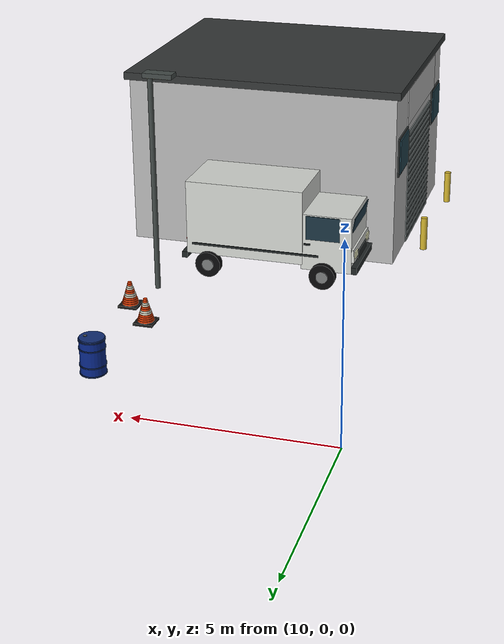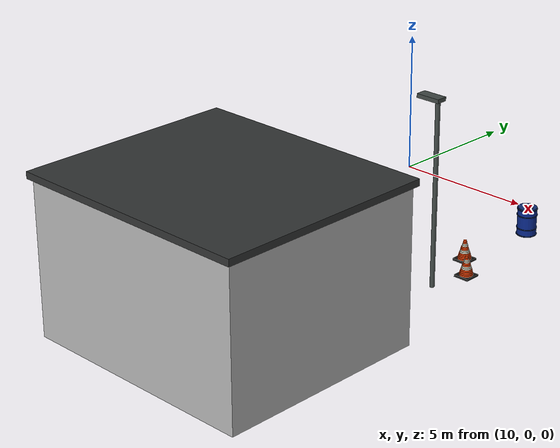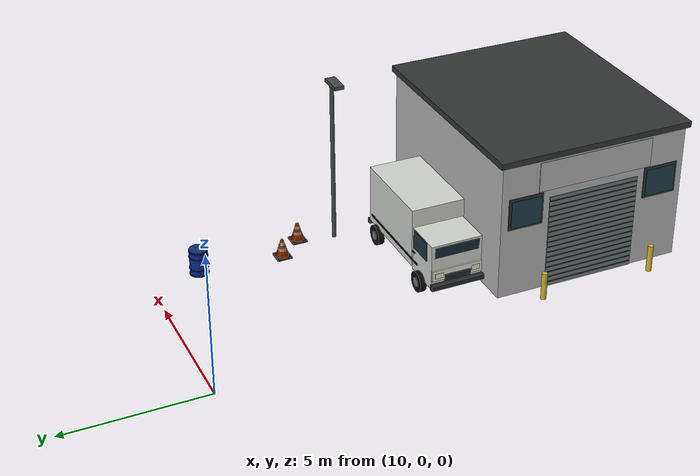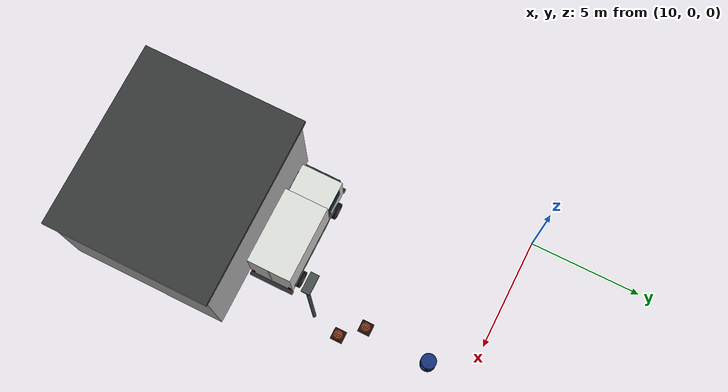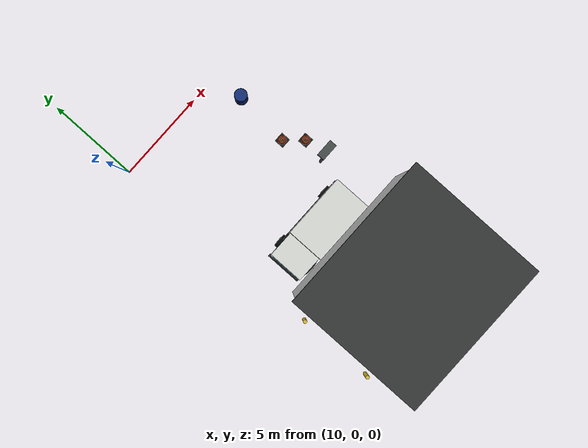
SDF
<sdf version="1.5">
 <world name="default">
  <include><uri>model://sun</uri></include>
  <model name="white_delivery_van">
   <static>true</static>
   <pose>14.2 -9.2 0.003 0 0 0</pose>
   <link name="structure">
    <visual name="cargo_box">
     <pose>0.65 0 1.71 0 0 0</pose>
     <geometry><box><size>3.4 1.96 2.15</size></box></geometry>
     <material>
      <ambient>0.83 0.84 0.82 1</ambient>
      <diffuse>0.83 0.84 0.82 1</diffuse>
      <specular>0.04 0.04 0.04 1</specular>
     </material>
    </visual>
    <collision name="cargo_box_collision">
     <pose>0.65 0 1.71 0 0 0</pose>
     <geometry><box><size>3.4 1.96 2.15</size></box></geometry>
     <surface><friction><ode><mu>1.0</mu><mu2>1.0</mu2></ode></friction></surface>
    </collision>
    <visual name="cabin">
     <pose>-1.725 0 1.31 0 0 0</pose>
     <geometry><box><size>1.45 1.87 1.64</size></box></geometry>
     <material>
      <ambient>0.83 0.84 0.82 1</ambient>
      <diffuse>0.83 0.84 0.82 1</diffuse>
      <specular>0.04 0.04 0.04 1</specular>
     </material>
    </visual>
    <collision name="cabin_collision">
     <pose>-1.725 0 1.31 0 0 0</pose>
     <geometry><box><size>1.45 1.87 1.64</size></box></geometry>
     <surface><friction><ode><mu>1.0</mu><mu2>1.0</mu2></ode></friction></surface>
    </collision>
    <visual name="bonnet">
     <pose>-2.2 0 0.99 0 0.08 0</pose>
     <geometry><box><size>0.65 1.85 0.37</size></box></geometry>
     <material>
      <ambient>0.83 0.84 0.82 1</ambient>
      <diffuse>0.83 0.84 0.82 1</diffuse>
      <specular>0.04 0.04 0.04 1</specular>
     </material>
    </visual>
    <visual name="front_windshield">
     <pose>-2.456 0 1.75 0 -0.17 0</pose>
     <geometry><box><size>0.018 1.63 0.7</size></box></geometry>
     <material>
      <ambient>0.1 0.2 0.25 1</ambient>
      <diffuse>0.1 0.2 0.25 1</diffuse>
      <specular>0.04 0.04 0.04 1</specular>
     </material>
    </visual>
    <visual name="front_bumper">
     <pose>-2.54 0 0.6 0 0 0</pose>
     <geometry><box><size>0.16 1.95 0.2</size></box></geometry>
     <material>
      <ambient>0.13 0.15 0.15 1</ambient>
      <diffuse>0.13 0.15 0.15 1</diffuse>
      <specular>0.04 0.04 0.04 1</specular>
     </material>
    </visual>
    <visual name="rear_bumper">
     <pose>2.42 0 0.56 0 0 0</pose>
     <geometry><box><size>0.16 2 0.18</size></box></geometry>
     <material>
      <ambient>0.13 0.15 0.15 1</ambient>
      <diffuse>0.13 0.15 0.15 1</diffuse>
      <specular>0.04 0.04 0.04 1</specular>
     </material>
    </visual>
    <visual name="front_grille">
     <pose>-2.539 0 0.89 0 0 0</pose>
     <geometry><box><size>0.022 0.97 0.24</size></box></geometry>
     <material>
      <ambient>0.13 0.15 0.15 1</ambient>
      <diffuse>0.13 0.15 0.15 1</diffuse>
      <specular>0.04 0.04 0.04 1</specular>
     </material>
    </visual>
    <visual name="cabin_window_-1">
     <pose>-1.63 -0.944 1.75 0 0 0</pose>
     <geometry><box><size>0.97 0.021 0.69</size></box></geometry>
     <material>
      <ambient>0.1 0.2 0.25 1</ambient>
      <diffuse>0.1 0.2 0.25 1</diffuse>
      <specular>0.04 0.04 0.04 1</specular>
     </material>
    </visual>
    <visual name="door_handle_-1">
     <pose>-1.19 -0.97 1.26 0 0 0</pose>
     <geometry><box><size>0.18 0.035 0.045</size></box></geometry>
     <material>
      <ambient>0.13 0.15 0.15 1</ambient>
      <diffuse>0.13 0.15 0.15 1</diffuse>
      <specular>0.04 0.04 0.04 1</specular>
     </material>
    </visual>
    <visual name="side_rubstrip_-1">
     <pose>0.33 -0.996 0.94 0 0 0</pose>
     <geometry><box><size>3.7 0.025 0.06</size></box></geometry>
     <material>
      <ambient>0.13 0.15 0.15 1</ambient>
      <diffuse>0.13 0.15 0.15 1</diffuse>
      <specular>0.04 0.04 0.04 1</specular>
     </material>
    </visual>
    <visual name="headlamp_-1">
     <pose>-2.54 -0.68 1.02 0 0 0</pose>
     <geometry><box><size>0.031 0.3 0.18</size></box></geometry>
     <material>
      <ambient>0.93 0.93 0.76 1</ambient>
      <diffuse>0.93 0.93 0.76 1</diffuse>
      <specular>0.04 0.04 0.04 1</specular>
     </material>
    </visual>
    <visual name="rear_lamp_-1">
     <pose>2.365 -0.85 0.98 0 0 0</pose>
     <geometry><box><size>0.025 0.12 0.26</size></box></geometry>
     <material>
      <ambient>0.66 0.028 0.015 1</ambient>
      <diffuse>0.66 0.028 0.015 1</diffuse>
      <specular>0.04 0.04 0.04 1</specular>
     </material>
    </visual>
    <visual name="wheel_-1_0">
     <pose>-1.65 -1 0.37 1.570796 0 0</pose>
     <geometry><cylinder><radius>0.37</radius><length>0.22</length></cylinder></geometry>
     <material>
      <ambient>0.035 0.036 0.038 1</ambient>
      <diffuse>0.035 0.036 0.038 1</diffuse>
      <specular>0.04 0.04 0.04 1</specular>
     </material>
    </visual>
    <collision name="wheel_-1_0_collision">
     <pose>-1.65 -1 0.37 1.570796 0 0</pose>
     <geometry><cylinder><radius>0.37</radius><length>0.22</length></cylinder></geometry>
     <surface><friction><ode><mu>1.0</mu><mu2>1.0</mu2></ode></friction></surface>
    </collision>
    <visual name="wheel_hub_-1_0">
     <pose>-1.65 -1.015 0.37 1.570796 0 0</pose>
     <geometry><cylinder><radius>0.17</radius><length>0.225</length></cylinder></geometry>
     <material>
      <ambient>0.47 0.48 0.48 1</ambient>
      <diffuse>0.47 0.48 0.48 1</diffuse>
      <specular>0.04 0.04 0.04 1</specular>
     </material>
    </visual>
    <visual name="wheel_-1_1">
     <pose>1.7 -1 0.37 1.570796 0 0</pose>
     <geometry><cylinder><radius>0.37</radius><length>0.22</length></cylinder></geometry>
     <material>
      <ambient>0.035 0.036 0.038 1</ambient>
      <diffuse>0.035 0.036 0.038 1</diffuse>
      <specular>0.04 0.04 0.04 1</specular>
     </material>
    </visual>
    <collision name="wheel_-1_1_collision">
     <pose>1.7 -1 0.37 1.570796 0 0</pose>
     <geometry><cylinder><radius>0.37</radius><length>0.22</length></cylinder></geometry>
     <surface><friction><ode><mu>1.0</mu><mu2>1.0</mu2></ode></friction></surface>
    </collision>
    <visual name="wheel_hub_-1_1">
     <pose>1.7 -1.015 0.37 1.570796 0 0</pose>
     <geometry><cylinder><radius>0.17</radius><length>0.225</length></cylinder></geometry>
     <material>
      <ambient>0.47 0.48 0.48 1</ambient>
      <diffuse>0.47 0.48 0.48 1</diffuse>
      <specular>0.04 0.04 0.04 1</specular>
     </material>
    </visual>
    <visual name="cabin_window_1">
     <pose>-1.63 0.944 1.75 0 0 0</pose>
     <geometry><box><size>0.97 0.021 0.69</size></box></geometry>
     <material>
      <ambient>0.1 0.2 0.25 1</ambient>
      <diffuse>0.1 0.2 0.25 1</diffuse>
      <specular>0.04 0.04 0.04 1</specular>
     </material>
    </visual>
    <visual name="door_handle_1">
     <pose>-1.19 0.97 1.26 0 0 0</pose>
     <geometry><box><size>0.18 0.035 0.045</size></box></geometry>
     <material>
      <ambient>0.13 0.15 0.15 1</ambient>
      <diffuse>0.13 0.15 0.15 1</diffuse>
      <specular>0.04 0.04 0.04 1</specular>
     </material>
    </visual>
    <visual name="side_rubstrip_1">
     <pose>0.33 0.996 0.94 0 0 0</pose>
     <geometry><box><size>3.7 0.025 0.06</size></box></geometry>
     <material>
      <ambient>0.13 0.15 0.15 1</ambient>
      <diffuse>0.13 0.15 0.15 1</diffuse>
      <specular>0.04 0.04 0.04 1</specular>
     </material>
    </visual>
    <visual name="headlamp_1">
     <pose>-2.54 0.68 1.02 0 0 0</pose>
     <geometry><box><size>0.031 0.3 0.18</size></box></geometry>
     <material>
      <ambient>0.93 0.93 0.76 1</ambient>
      <diffuse>0.93 0.93 0.76 1</diffuse>
      <specular>0.04 0.04 0.04 1</specular>
     </material>
    </visual>
    <visual name="rear_lamp_1">
     <pose>2.365 0.85 0.98 0 0 0</pose>
     <geometry><box><size>0.025 0.12 0.26</size></box></geometry>
     <material>
      <ambient>0.66 0.028 0.015 1</ambient>
      <diffuse>0.66 0.028 0.015 1</diffuse>
      <specular>0.04 0.04 0.04 1</specular>
     </material>
    </visual>
    <visual name="wheel_1_0">
     <pose>-1.65 1 0.37 1.570796 0 0</pose>
     <geometry><cylinder><radius>0.37</radius><length>0.22</length></cylinder></geometry>
     <material>
      <ambient>0.035 0.036 0.038 1</ambient>
      <diffuse>0.035 0.036 0.038 1</diffuse>
      <specular>0.04 0.04 0.04 1</specular>
     </material>
    </visual>
    <collision name="wheel_1_0_collision">
     <pose>-1.65 1 0.37 1.570796 0 0</pose>
     <geometry><cylinder><radius>0.37</radius><length>0.22</length></cylinder></geometry>
     <surface><friction><ode><mu>1.0</mu><mu2>1.0</mu2></ode></friction></surface>
    </collision>
    <visual name="wheel_hub_1_0">
     <pose>-1.65 1.015 0.37 1.570796 0 0</pose>
     <geometry><cylinder><radius>0.17</radius><length>0.225</length></cylinder></geometry>
     <material>
      <ambient>0.47 0.48 0.48 1</ambient>
      <diffuse>0.47 0.48 0.48 1</diffuse>
      <specular>0.04 0.04 0.04 1</specular>
     </material>
    </visual>
    <visual name="wheel_1_1">
     <pose>1.7 1 0.37 1.570796 0 0</pose>
     <geometry><cylinder><radius>0.37</radius><length>0.22</length></cylinder></geometry>
     <material>
      <ambient>0.035 0.036 0.038 1</ambient>
      <diffuse>0.035 0.036 0.038 1</diffuse>
      <specular>0.04 0.04 0.04 1</specular>
     </material>
    </visual>
    <collision name="wheel_1_1_collision">
     <pose>1.7 1 0.37 1.570796 0 0</pose>
     <geometry><cylinder><radius>0.37</radius><length>0.22</length></cylinder></geometry>
     <surface><friction><ode><mu>1.0</mu><mu2>1.0</mu2></ode></friction></surface>
    </collision>
    <visual name="wheel_hub_1_1">
     <pose>1.7 1.015 0.37 1.570796 0 0</pose>
     <geometry><cylinder><radius>0.17</radius><length>0.225</length></cylinder></geometry>
     <material>
      <ambient>0.47 0.48 0.48 1</ambient>
      <diffuse>0.47 0.48 0.48 1</diffuse>
      <specular>0.04 0.04 0.04 1</specular>
     </material>
    </visual>
    <visual name="cargo_rear_door_split">
     <pose>2.365 0 1.72 0 0 0</pose>
     <geometry><box><size>0.026 0.025 1.95</size></box></geometry>
     <material>
      <ambient>0.13 0.15 0.15 1</ambient>
      <diffuse>0.13 0.15 0.15 1</diffuse>
      <specular>0.04 0.04 0.04 1</specular>
     </material>
    </visual>
   </link>
  </model>
  <model name="blue_drum">
   <static>true</static>
   <pose>16.7 -1.8 0.003 0 0 0</pose>
   <link name="structure">
    <visual name="drum_body">
     <pose>0 0 0.48 0 0 0</pose>
     <geometry><cylinder><radius>0.32</radius><length>0.94</length></cylinder></geometry>
     <material>
      <ambient>0.03 0.15 0.53 1</ambient>
      <diffuse>0.03 0.15 0.53 1</diffuse>
      <specular>0.04 0.04 0.04 1</specular>
     </material>
    </visual>
    <collision name="drum_body_collision">
     <pose>0 0 0.48 0 0 0</pose>
     <geometry><cylinder><radius>0.32</radius><length>0.94</length></cylinder></geometry>
     <surface><friction><ode><mu>1.0</mu><mu2>1.0</mu2></ode></friction></surface>
    </collision>
    <visual name="drum_ring_0">
     <pose>0 0 0.04 0 0 0</pose>
     <geometry><cylinder><radius>0.342</radius><length>0.026</length></cylinder></geometry>
     <material>
      <ambient>0.1 0.19 0.4 1</ambient>
      <diffuse>0.1 0.19 0.4 1</diffuse>
      <specular>0.04 0.04 0.04 1</specular>
     </material>
    </visual>
    <visual name="drum_ring_1">
     <pose>0 0 0.27 0 0 0</pose>
     <geometry><cylinder><radius>0.342</radius><length>0.026</length></cylinder></geometry>
     <material>
      <ambient>0.1 0.19 0.4 1</ambient>
      <diffuse>0.1 0.19 0.4 1</diffuse>
      <specular>0.04 0.04 0.04 1</specular>
     </material>
    </visual>
    <visual name="drum_ring_2">
     <pose>0 0 0.72 0 0 0</pose>
     <geometry><cylinder><radius>0.342</radius><length>0.026</length></cylinder></geometry>
     <material>
      <ambient>0.1 0.19 0.4 1</ambient>
      <diffuse>0.1 0.19 0.4 1</diffuse>
      <specular>0.04 0.04 0.04 1</specular>
     </material>
    </visual>
    <visual name="drum_ring_3">
     <pose>0 0 0.94 0 0 0</pose>
     <geometry><cylinder><radius>0.342</radius><length>0.026</length></cylinder></geometry>
     <material>
      <ambient>0.1 0.19 0.4 1</ambient>
      <diffuse>0.1 0.19 0.4 1</diffuse>
      <specular>0.04 0.04 0.04 1</specular>
     </material>
    </visual>
    <visual name="drum_lid">
     <pose>0 0 0.971 0 0 0</pose>
     <geometry><cylinder><radius>0.32</radius><length>0.035</length></cylinder></geometry>
     <material>
      <ambient>0.07 0.18 0.46 1</ambient>
      <diffuse>0.07 0.18 0.46 1</diffuse>
      <specular>0.04 0.04 0.04 1</specular>
     </material>
    </visual>
    <visual name="lid_bung">
     <pose>0.17 0 0.997 0 0 0</pose>
     <geometry><cylinder><radius>0.043</radius><length>0.018</length></cylinder></geometry>
     <material>
      <ambient>0.39 0.4 0.4 1</ambient>
      <diffuse>0.39 0.4 0.4 1</diffuse>
      <specular>0.04 0.04 0.04 1</specular>
     </material>
    </visual>
   </link>
  </model>
  <model name="traffic_cone_1">
   <static>true</static>
   <pose>16.5 -4.8 0.003 0 0 0</pose>
   <link name="structure">
    <visual name="rubber_base">
     <pose>0 0 0.0325 0 0 0</pose>
     <geometry><box><size>0.54 0.54 0.065</size></box></geometry>
     <material>
      <ambient>0.07 0.07 0.065 1</ambient>
      <diffuse>0.07 0.07 0.065 1</diffuse>
      <specular>0.04 0.04 0.04 1</specular>
     </material>
    </visual>
    <collision name="rubber_base_collision">
     <pose>0 0 0.0325 0 0 0</pose>
     <geometry><box><size>0.54 0.54 0.065</size></box></geometry>
     <surface><friction><ode><mu>1.0</mu><mu2>1.0</mu2></ode></friction></surface>
    </collision>
    <visual name="cone_slice_0">
     <pose>0 0 0.09 0 0 0</pose>
     <geometry><cylinder><radius>0.225</radius><length>0.056</length></cylinder></geometry>
     <material>
      <ambient>0.92 0.25 0.025 1</ambient>
      <diffuse>0.92 0.25 0.025 1</diffuse>
      <specular>0.04 0.04 0.04 1</specular>
     </material>
    </visual>
    <visual name="cone_slice_1">
     <pose>0 0 0.143 0 0 0</pose>
     <geometry><cylinder><radius>0.20900000000000002</radius><length>0.056</length></cylinder></geometry>
     <material>
      <ambient>0.92 0.25 0.025 1</ambient>
      <diffuse>0.92 0.25 0.025 1</diffuse>
      <specular>0.04 0.04 0.04 1</specular>
     </material>
    </visual>
    <visual name="cone_slice_2">
     <pose>0 0 0.196 0 0 0</pose>
     <geometry><cylinder><radius>0.193</radius><length>0.056</length></cylinder></geometry>
     <material>
      <ambient>0.92 0.25 0.025 1</ambient>
      <diffuse>0.92 0.25 0.025 1</diffuse>
      <specular>0.04 0.04 0.04 1</specular>
     </material>
    </visual>
    <visual name="cone_slice_3">
     <pose>0 0 0.249 0 0 0</pose>
     <geometry><cylinder><radius>0.177</radius><length>0.056</length></cylinder></geometry>
     <material>
      <ambient>0.92 0.25 0.025 1</ambient>
      <diffuse>0.92 0.25 0.025 1</diffuse>
      <specular>0.04 0.04 0.04 1</specular>
     </material>
    </visual>
    <visual name="cone_slice_4">
     <pose>0 0 0.302 0 0 0</pose>
     <geometry><cylinder><radius>0.161</radius><length>0.056</length></cylinder></geometry>
     <material>
      <ambient>0.88 0.87 0.79 1</ambient>
      <diffuse>0.88 0.87 0.79 1</diffuse>
      <specular>0.04 0.04 0.04 1</specular>
     </material>
    </visual>
    <visual name="cone_slice_5">
     <pose>0 0 0.355 0 0 0</pose>
     <geometry><cylinder><radius>0.14500000000000002</radius><length>0.056</length></cylinder></geometry>
     <material>
      <ambient>0.88 0.87 0.79 1</ambient>
      <diffuse>0.88 0.87 0.79 1</diffuse>
      <specular>0.04 0.04 0.04 1</specular>
     </material>
    </visual>
    <visual name="cone_slice_6">
     <pose>0 0 0.408 0 0 0</pose>
     <geometry><cylinder><radius>0.129</radius><length>0.056</length></cylinder></geometry>
     <material>
      <ambient>0.92 0.25 0.025 1</ambient>
      <diffuse>0.92 0.25 0.025 1</diffuse>
      <specular>0.04 0.04 0.04 1</specular>
     </material>
    </visual>
    <visual name="cone_slice_7">
     <pose>0 0 0.461 0 0 0</pose>
     <geometry><cylinder><radius>0.113</radius><length>0.056</length></cylinder></geometry>
     <material>
      <ambient>0.92 0.25 0.025 1</ambient>
      <diffuse>0.92 0.25 0.025 1</diffuse>
      <specular>0.04 0.04 0.04 1</specular>
     </material>
    </visual>
    <visual name="cone_slice_8">
     <pose>0 0 0.514 0 0 0</pose>
     <geometry><cylinder><radius>0.097</radius><length>0.056</length></cylinder></geometry>
     <material>
      <ambient>0.88 0.87 0.79 1</ambient>
      <diffuse>0.88 0.87 0.79 1</diffuse>
      <specular>0.04 0.04 0.04 1</specular>
     </material>
    </visual>
    <visual name="cone_slice_9">
     <pose>0 0 0.567 0 0 0</pose>
     <geometry><cylinder><radius>0.08099999999999999</radius><length>0.056</length></cylinder></geometry>
     <material>
      <ambient>0.88 0.87 0.79 1</ambient>
      <diffuse>0.88 0.87 0.79 1</diffuse>
      <specular>0.04 0.04 0.04 1</specular>
     </material>
    </visual>
    <visual name="cone_slice_10">
     <pose>0 0 0.62 0 0 0</pose>
     <geometry><cylinder><radius>0.065</radius><length>0.056</length></cylinder></geometry>
     <material>
      <ambient>0.92 0.25 0.025 1</ambient>
      <diffuse>0.92 0.25 0.025 1</diffuse>
      <specular>0.04 0.04 0.04 1</specular>
     </material>
    </visual>
    <visual name="cone_slice_11">
     <pose>0 0 0.673 0 0 0</pose>
     <geometry><cylinder><radius>0.049000000000000016</radius><length>0.056</length></cylinder></geometry>
     <material>
      <ambient>0.92 0.25 0.025 1</ambient>
      <diffuse>0.92 0.25 0.025 1</diffuse>
      <specular>0.04 0.04 0.04 1</specular>
     </material>
    </visual>
    <collision name="cone_body_collision">
     <pose>0 0 .39 0 0 0</pose>
     <geometry><cylinder><radius>0.23</radius><length>0.73</length></cylinder></geometry>
    </collision>
   </link>
  </model>
  <model name="traffic_cone_2">
   <static>true</static>
   <pose>17.3 -5.7 0.003 0 0 0</pose>
   <link name="structure">
    <visual name="rubber_base">
     <pose>0 0 0.0325 0 0 0</pose>
     <geometry><box><size>0.54 0.54 0.065</size></box></geometry>
     <material>
      <ambient>0.07 0.07 0.065 1</ambient>
      <diffuse>0.07 0.07 0.065 1</diffuse>
      <specular>0.04 0.04 0.04 1</specular>
     </material>
    </visual>
    <collision name="rubber_base_collision">
     <pose>0 0 0.0325 0 0 0</pose>
     <geometry><box><size>0.54 0.54 0.065</size></box></geometry>
     <surface><friction><ode><mu>1.0</mu><mu2>1.0</mu2></ode></friction></surface>
    </collision>
    <visual name="cone_slice_0">
     <pose>0 0 0.09 0 0 0</pose>
     <geometry><cylinder><radius>0.225</radius><length>0.056</length></cylinder></geometry>
     <material>
      <ambient>0.92 0.25 0.025 1</ambient>
      <diffuse>0.92 0.25 0.025 1</diffuse>
      <specular>0.04 0.04 0.04 1</specular>
     </material>
    </visual>
    <visual name="cone_slice_1">
     <pose>0 0 0.143 0 0 0</pose>
     <geometry><cylinder><radius>0.20900000000000002</radius><length>0.056</length></cylinder></geometry>
     <material>
      <ambient>0.92 0.25 0.025 1</ambient>
      <diffuse>0.92 0.25 0.025 1</diffuse>
      <specular>0.04 0.04 0.04 1</specular>
     </material>
    </visual>
    <visual name="cone_slice_2">
     <pose>0 0 0.196 0 0 0</pose>
     <geometry><cylinder><radius>0.193</radius><length>0.056</length></cylinder></geometry>
     <material>
      <ambient>0.92 0.25 0.025 1</ambient>
      <diffuse>0.92 0.25 0.025 1</diffuse>
      <specular>0.04 0.04 0.04 1</specular>
     </material>
    </visual>
    <visual name="cone_slice_3">
     <pose>0 0 0.249 0 0 0</pose>
     <geometry><cylinder><radius>0.177</radius><length>0.056</length></cylinder></geometry>
     <material>
      <ambient>0.92 0.25 0.025 1</ambient>
      <diffuse>0.92 0.25 0.025 1</diffuse>
      <specular>0.04 0.04 0.04 1</specular>
     </material>
    </visual>
    <visual name="cone_slice_4">
     <pose>0 0 0.302 0 0 0</pose>
     <geometry><cylinder><radius>0.161</radius><length>0.056</length></cylinder></geometry>
     <material>
      <ambient>0.88 0.87 0.79 1</ambient>
      <diffuse>0.88 0.87 0.79 1</diffuse>
      <specular>0.04 0.04 0.04 1</specular>
     </material>
    </visual>
    <visual name="cone_slice_5">
     <pose>0 0 0.355 0 0 0</pose>
     <geometry><cylinder><radius>0.14500000000000002</radius><length>0.056</length></cylinder></geometry>
     <material>
      <ambient>0.88 0.87 0.79 1</ambient>
      <diffuse>0.88 0.87 0.79 1</diffuse>
      <specular>0.04 0.04 0.04 1</specular>
     </material>
    </visual>
    <visual name="cone_slice_6">
     <pose>0 0 0.408 0 0 0</pose>
     <geometry><cylinder><radius>0.129</radius><length>0.056</length></cylinder></geometry>
     <material>
      <ambient>0.92 0.25 0.025 1</ambient>
      <diffuse>0.92 0.25 0.025 1</diffuse>
      <specular>0.04 0.04 0.04 1</specular>
     </material>
    </visual>
    <visual name="cone_slice_7">
     <pose>0 0 0.461 0 0 0</pose>
     <geometry><cylinder><radius>0.113</radius><length>0.056</length></cylinder></geometry>
     <material>
      <ambient>0.92 0.25 0.025 1</ambient>
      <diffuse>0.92 0.25 0.025 1</diffuse>
      <specular>0.04 0.04 0.04 1</specular>
     </material>
    </visual>
    <visual name="cone_slice_8">
     <pose>0 0 0.514 0 0 0</pose>
     <geometry><cylinder><radius>0.097</radius><length>0.056</length></cylinder></geometry>
     <material>
      <ambient>0.88 0.87 0.79 1</ambient>
      <diffuse>0.88 0.87 0.79 1</diffuse>
      <specular>0.04 0.04 0.04 1</specular>
     </material>
    </visual>
    <visual name="cone_slice_9">
     <pose>0 0 0.567 0 0 0</pose>
     <geometry><cylinder><radius>0.08099999999999999</radius><length>0.056</length></cylinder></geometry>
     <material>
      <ambient>0.88 0.87 0.79 1</ambient>
      <diffuse>0.88 0.87 0.79 1</diffuse>
      <specular>0.04 0.04 0.04 1</specular>
     </material>
    </visual>
    <visual name="cone_slice_10">
     <pose>0 0 0.62 0 0 0</pose>
     <geometry><cylinder><radius>0.065</radius><length>0.056</length></cylinder></geometry>
     <material>
      <ambient>0.92 0.25 0.025 1</ambient>
      <diffuse>0.92 0.25 0.025 1</diffuse>
      <specular>0.04 0.04 0.04 1</specular>
     </material>
    </visual>
    <visual name="cone_slice_11">
     <pose>0 0 0.673 0 0 0</pose>
     <geometry><cylinder><radius>0.049000000000000016</radius><length>0.056</length></cylinder></geometry>
     <material>
      <ambient>0.92 0.25 0.025 1</ambient>
      <diffuse>0.92 0.25 0.025 1</diffuse>
      <specular>0.04 0.04 0.04 1</specular>
     </material>
    </visual>
    <collision name="cone_body_collision">
     <pose>0 0 .39 0 0 0</pose>
     <geometry><cylinder><radius>0.23</radius><length>0.73</length></cylinder></geometry>
    </collision>
   </link>
  </model>
  <model name="brick_warehouse">
   <static>true</static>
   <pose>15 -13.9 0.003 0 0 0</pose>
   <link name="structure">
    <visual name="main_building">
     <pose>0 0 2.5 0 0 0</pose>
     <geometry><box><size>8 7 5</size></box></geometry>
     <material>
      <script>
       <uri>file:///home/fxxk/px4_agent/scene/materials/scripts</uri>
       <uri>file:///home/fxxk/px4_agent/scene/materials/textures</uri>
       <name>Yard/brick</name>
      </script>
     </material>
    </visual>
    <collision name="main_building_collision">
     <pose>0 0 2.5 0 0 0</pose>
     <geometry><box><size>8 7 5</size></box></geometry>
     <surface><friction><ode><mu>1.0</mu><mu2>1.0</mu2></ode></friction></surface>
    </collision>
    <visual name="flat_roof">
     <pose>0 0 5.1 0 0 0</pose>
     <geometry><box><size>8.25 7.25 0.22</size></box></geometry>
     <material>
      <ambient>0.2 0.21 0.21 1</ambient>
      <diffuse>0.2 0.21 0.21 1</diffuse>
      <specular>0.04 0.04 0.04 1</specular>
     </material>
    </visual>
    <collision name="flat_roof_collision">
     <pose>0 0 5.1 0 0 0</pose>
     <geometry><box><size>8.25 7.25 0.22</size></box></geometry>
     <surface><friction><ode><mu>1.0</mu><mu2>1.0</mu2></ode></friction></surface>
    </collision>
    <visual name="loading_door">
     <pose>-4.022 0 1.75 0 0 0</pose>
     <geometry><box><size>0.032 3.4 3.5</size></box></geometry>
     <material>
      <ambient>0.45 0.48 0.48 1</ambient>
      <diffuse>0.45 0.48 0.48 1</diffuse>
      <specular>0.04 0.04 0.04 1</specular>
     </material>
    </visual>
    <visual name="door_slat_0">
     <pose>-4.048 0 0.18 0 0 0</pose>
     <geometry><box><size>0.036 3.36 0.025</size></box></geometry>
     <material>
      <ambient>0.27 0.3 0.3 1</ambient>
      <diffuse>0.27 0.3 0.3 1</diffuse>
      <specular>0.04 0.04 0.04 1</specular>
     </material>
    </visual>
    <visual name="door_slat_1">
     <pose>-4.048 0 0.378125 0 0 0</pose>
     <geometry><box><size>0.036 3.36 0.025</size></box></geometry>
     <material>
      <ambient>0.27 0.3 0.3 1</ambient>
      <diffuse>0.27 0.3 0.3 1</diffuse>
      <specular>0.04 0.04 0.04 1</specular>
     </material>
    </visual>
    <visual name="door_slat_2">
     <pose>-4.048 0 0.57625 0 0 0</pose>
     <geometry><box><size>0.036 3.36 0.025</size></box></geometry>
     <material>
      <ambient>0.27 0.3 0.3 1</ambient>
      <diffuse>0.27 0.3 0.3 1</diffuse>
      <specular>0.04 0.04 0.04 1</specular>
     </material>
    </visual>
    <visual name="door_slat_3">
     <pose>-4.048 0 0.774375 0 0 0</pose>
     <geometry><box><size>0.036 3.36 0.025</size></box></geometry>
     <material>
      <ambient>0.27 0.3 0.3 1</ambient>
      <diffuse>0.27 0.3 0.3 1</diffuse>
      <specular>0.04 0.04 0.04 1</specular>
     </material>
    </visual>
    <visual name="door_slat_4">
     <pose>-4.048 0 0.9725 0 0 0</pose>
     <geometry><box><size>0.036 3.36 0.025</size></box></geometry>
     <material>
      <ambient>0.27 0.3 0.3 1</ambient>
      <diffuse>0.27 0.3 0.3 1</diffuse>
      <specular>0.04 0.04 0.04 1</specular>
     </material>
    </visual>
    <visual name="door_slat_5">
     <pose>-4.048 0 1.170625 0 0 0</pose>
     <geometry><box><size>0.036 3.36 0.025</size></box></geometry>
     <material>
      <ambient>0.27 0.3 0.3 1</ambient>
      <diffuse>0.27 0.3 0.3 1</diffuse>
      <specular>0.04 0.04 0.04 1</specular>
     </material>
    </visual>
    <visual name="door_slat_6">
     <pose>-4.048 0 1.36875 0 0 0</pose>
     <geometry><box><size>0.036 3.36 0.025</size></box></geometry>
     <material>
      <ambient>0.27 0.3 0.3 1</ambient>
      <diffuse>0.27 0.3 0.3 1</diffuse>
      <specular>0.04 0.04 0.04 1</specular>
     </material>
    </visual>
    <visual name="door_slat_7">
     <pose>-4.048 0 1.566875 0 0 0</pose>
     <geometry><box><size>0.036 3.36 0.025</size></box></geometry>
     <material>
      <ambient>0.27 0.3 0.3 1</ambient>
      <diffuse>0.27 0.3 0.3 1</diffuse>
      <specular>0.04 0.04 0.04 1</specular>
     </material>
    </visual>
    <visual name="door_slat_8">
     <pose>-4.048 0 1.765 0 0 0</pose>
     <geometry><box><size>0.036 3.36 0.025</size></box></geometry>
     <material>
      <ambient>0.27 0.3 0.3 1</ambient>
      <diffuse>0.27 0.3 0.3 1</diffuse>
      <specular>0.04 0.04 0.04 1</specular>
     </material>
    </visual>
    <visual name="door_slat_9">
     <pose>-4.048 0 1.963125 0 0 0</pose>
     <geometry><box><size>0.036 3.36 0.025</size></box></geometry>
     <material>
      <ambient>0.27 0.3 0.3 1</ambient>
      <diffuse>0.27 0.3 0.3 1</diffuse>
      <specular>0.04 0.04 0.04 1</specular>
     </material>
    </visual>
    <visual name="door_slat_10">
     <pose>-4.048 0 2.16125 0 0 0</pose>
     <geometry><box><size>0.036 3.36 0.025</size></box></geometry>
     <material>
      <ambient>0.27 0.3 0.3 1</ambient>
      <diffuse>0.27 0.3 0.3 1</diffuse>
      <specular>0.04 0.04 0.04 1</specular>
     </material>
    </visual>
    <visual name="door_slat_11">
     <pose>-4.048 0 2.359375 0 0 0</pose>
     <geometry><box><size>0.036 3.36 0.025</size></box></geometry>
     <material>
      <ambient>0.27 0.3 0.3 1</ambient>
      <diffuse>0.27 0.3 0.3 1</diffuse>
      <specular>0.04 0.04 0.04 1</specular>
     </material>
    </visual>
    <visual name="door_slat_12">
     <pose>-4.048 0 2.5575 0 0 0</pose>
     <geometry><box><size>0.036 3.36 0.025</size></box></geometry>
     <material>
      <ambient>0.27 0.3 0.3 1</ambient>
      <diffuse>0.27 0.3 0.3 1</diffuse>
      <specular>0.04 0.04 0.04 1</specular>
     </material>
    </visual>
    <visual name="door_slat_13">
     <pose>-4.048 0 2.755625 0 0 0</pose>
     <geometry><box><size>0.036 3.36 0.025</size></box></geometry>
     <material>
      <ambient>0.27 0.3 0.3 1</ambient>
      <diffuse>0.27 0.3 0.3 1</diffuse>
      <specular>0.04 0.04 0.04 1</specular>
     </material>
    </visual>
    <visual name="door_slat_14">
     <pose>-4.048 0 2.95375 0 0 0</pose>
     <geometry><box><size>0.036 3.36 0.025</size></box></geometry>
     <material>
      <ambient>0.27 0.3 0.3 1</ambient>
      <diffuse>0.27 0.3 0.3 1</diffuse>
      <specular>0.04 0.04 0.04 1</specular>
     </material>
    </visual>
    <visual name="door_slat_15">
     <pose>-4.048 0 3.151875 0 0 0</pose>
     <geometry><box><size>0.036 3.36 0.025</size></box></geometry>
     <material>
      <ambient>0.27 0.3 0.3 1</ambient>
      <diffuse>0.27 0.3 0.3 1</diffuse>
      <specular>0.04 0.04 0.04 1</specular>
     </material>
    </visual>
    <visual name="door_slat_16">
     <pose>-4.048 0 3.35 0 0 0</pose>
     <geometry><box><size>0.036 3.36 0.025</size></box></geometry>
     <material>
      <ambient>0.27 0.3 0.3 1</ambient>
      <diffuse>0.27 0.3 0.3 1</diffuse>
      <specular>0.04 0.04 0.04 1</specular>
     </material>
    </visual>
    <visual name="front_window_frame_-1">
     <pose>-4.033 -2.6 3.17 0 0 0</pose>
     <geometry><box><size>0.044 1.28 1.15</size></box></geometry>
     <material>
      <ambient>0.2 0.22 0.22 1</ambient>
      <diffuse>0.2 0.22 0.22 1</diffuse>
      <specular>0.04 0.04 0.04 1</specular>
     </material>
    </visual>
    <visual name="front_window_-1">
     <pose>-4.064 -2.6 3.17 0 0 0</pose>
     <geometry><box><size>0.048 1.12 0.99</size></box></geometry>
     <material>
      <ambient>0.12 0.25 0.3 1</ambient>
      <diffuse>0.12 0.25 0.3 1</diffuse>
      <specular>0.04 0.04 0.04 1</specular>
     </material>
    </visual>
    <visual name="front_window_frame_1">
     <pose>-4.033 2.6 3.17 0 0 0</pose>
     <geometry><box><size>0.044 1.28 1.15</size></box></geometry>
     <material>
      <ambient>0.2 0.22 0.22 1</ambient>
      <diffuse>0.2 0.22 0.22 1</diffuse>
      <specular>0.04 0.04 0.04 1</specular>
     </material>
    </visual>
    <visual name="front_window_1">
     <pose>-4.064 2.6 3.17 0 0 0</pose>
     <geometry><box><size>0.048 1.12 0.99</size></box></geometry>
     <material>
      <ambient>0.12 0.25 0.3 1</ambient>
      <diffuse>0.12 0.25 0.3 1</diffuse>
      <specular>0.04 0.04 0.04 1</specular>
     </material>
    </visual>
    <visual name="warehouse_name">
     <pose>-4.06 0 4.35 0 0 0</pose>
     <geometry><box><size>0.028 4.3 1.075</size></box></geometry>
     <material>
      <script>
       <uri>file:///home/fxxk/px4_agent/scene/materials/scripts</uri>
       <uri>file:///home/fxxk/px4_agent/scene/materials/textures</uri>
       <name>Yard/warehouse_sign</name>
      </script>
     </material>
    </visual>
    <visual name="dock_bollard_0">
     <pose>-4.65 -2.1 0.5 0 0 0</pose>
     <geometry><cylinder><radius>0.1</radius><length>1</length></cylinder></geometry>
     <material>
      <ambient>0.82 0.7 0.18 1</ambient>
      <diffuse>0.82 0.7 0.18 1</diffuse>
      <specular>0.04 0.04 0.04 1</specular>
     </material>
    </visual>
    <collision name="dock_bollard_0_collision">
     <pose>-4.65 -2.1 0.5 0 0 0</pose>
     <geometry><cylinder><radius>0.1</radius><length>1</length></cylinder></geometry>
     <surface><friction><ode><mu>1.0</mu><mu2>1.0</mu2></ode></friction></surface>
    </collision>
    <visual name="dock_bollard_1">
     <pose>-4.65 2.1 0.5 0 0 0</pose>
     <geometry><cylinder><radius>0.1</radius><length>1</length></cylinder></geometry>
     <material>
      <ambient>0.82 0.7 0.18 1</ambient>
      <diffuse>0.82 0.7 0.18 1</diffuse>
      <specular>0.04 0.04 0.04 1</specular>
     </material>
    </visual>
    <collision name="dock_bollard_1_collision">
     <pose>-4.65 2.1 0.5 0 0 0</pose>
     <geometry><cylinder><radius>0.1</radius><length>1</length></cylinder></geometry>
     <surface><friction><ode><mu>1.0</mu><mu2>1.0</mu2></ode></friction></surface>
    </collision>
   </link>
  </model>
  <model name="street_lamp_south">
   <static>true</static>
   <pose>17 -7 0.003 0 0 0</pose>
   <link name="structure">
    <visual name="lamp_pole">
     <pose>0 0 3.075 0 0 0</pose>
     <geometry><cylinder><radius>0.075</radius><length>6.15</length></cylinder></geometry>
     <material>
      <ambient>0.26 0.29 0.28 1</ambient>
      <diffuse>0.26 0.29 0.28 1</diffuse>
      <specular>0.04 0.04 0.04 1</specular>
     </material>
    </visual>
    <collision name="lamp_pole_collision">
     <pose>0 0 3.075 0 0 0</pose>
     <geometry><cylinder><radius>0.075</radius><length>6.15</length></cylinder></geometry>
     <surface><friction><ode><mu>1.0</mu><mu2>1.0</mu2></ode></friction></surface>
    </collision>
    <visual name="lamp_head">
     <pose>-0.26 0 6.17 0 0 0</pose>
     <geometry><box><size>0.82 0.36 0.13</size></box></geometry>
     <material>
      <ambient>0.26 0.29 0.28 1</ambient>
      <diffuse>0.26 0.29 0.28 1</diffuse>
      <specular>0.04 0.04 0.04 1</specular>
     </material>
    </visual>
    <visual name="lamp_glass">
     <pose>-0.26 0 6.098 0 0 0</pose>
     <geometry><box><size>0.67 0.28 0.015</size></box></geometry>
     <cast_shadows>false</cast_shadows>
     <material>
      <ambient>0.82 0.82 0.66 1</ambient>
      <diffuse>0.82 0.82 0.66 1</diffuse>
      <specular>0.04 0.04 0.04 1</specular>
     </material>
    </visual>
   </link>
  </model>
 </world>
</sdf>
